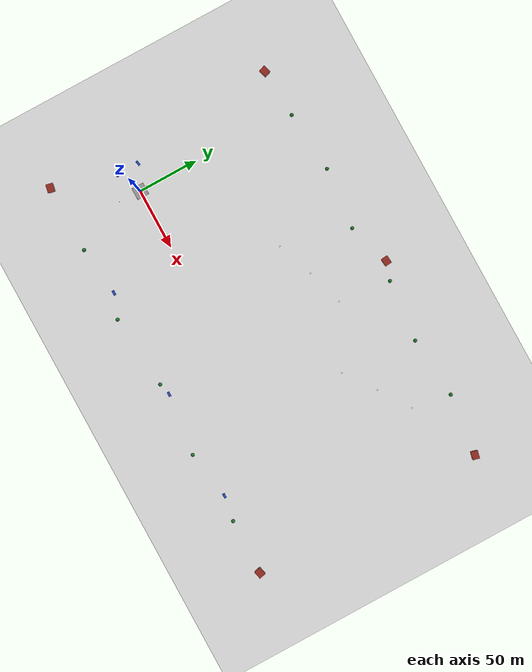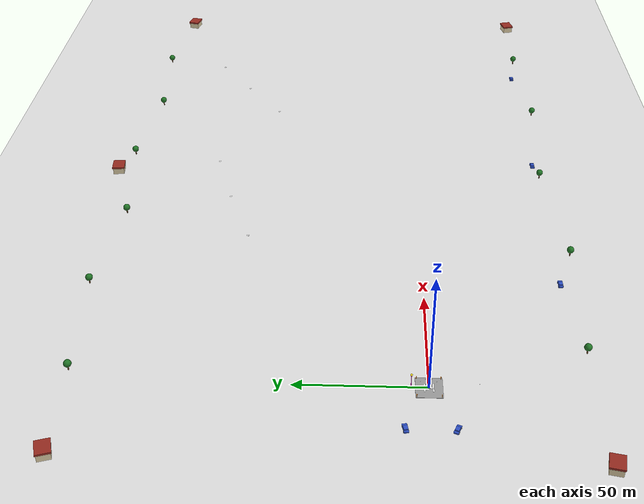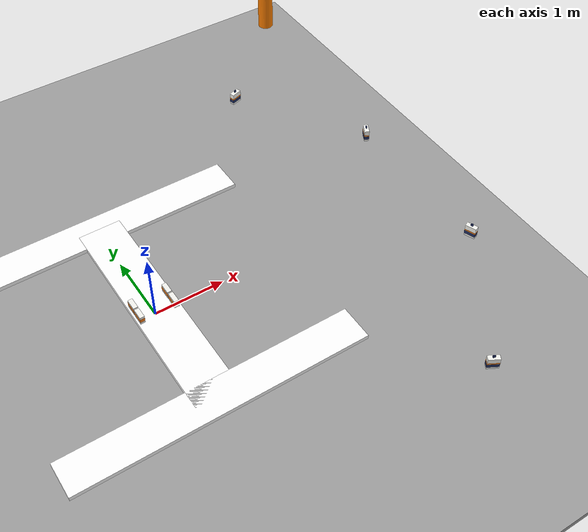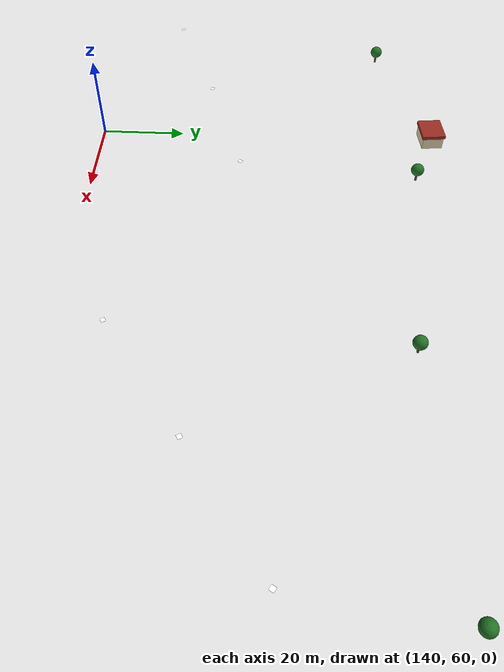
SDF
<?xml version="1.0" ?>
<sdf version="1.9">
  <world name="aavc_field">

    <!-- Spherical coordinates: world origin = the IAAI KMITL Launch & Recovery
         point (== config site.center == PX4_HOME_*; keep all in sync). -->
    <spherical_coordinates>
      <surface_model>EARTH_WGS84</surface_model>
      <latitude_deg>13.730250</latitude_deg>
      <longitude_deg>100.787300</longitude_deg>
      <elevation>2</elevation>
      <heading_deg>0</heading_deg>
    </spherical_coordinates>

    <physics name="1ms" type="ignored">
      <max_step_size>0.001</max_step_size>
      <real_time_factor>1.0</real_time_factor>
      <real_time_update_rate>1000</real_time_update_rate>
    </physics>

    <!-- Standard physics + sensors plugins -->
    <plugin filename="gz-sim-physics-system" name="gz::sim::systems::Physics"/>
    <plugin filename="gz-sim-user-commands-system" name="gz::sim::systems::UserCommands"/>
    <plugin filename="gz-sim-scene-broadcaster-system" name="gz::sim::systems::SceneBroadcaster"/>
    <plugin filename="gz-sim-sensors-system" name="gz::sim::systems::Sensors">
      <render_engine>ogre2</render_engine>
    </plugin>
    <plugin filename="gz-sim-imu-system" name="gz::sim::systems::Imu"/>
    <plugin filename="gz-sim-air-pressure-system" name="gz::sim::systems::AirPressure"/>
    <plugin filename="gz-sim-magnetometer-system" name="gz::sim::systems::Magnetometer"/>
    <plugin filename="gz-sim-navsat-system" name="gz::sim::systems::NavSat"/>

    <!-- Wind plugin — light, steady breeze for landing-precision realism.
         Tuning lives in sitl/aavc_config.yaml.wind_sitl. -->
    <plugin filename="gz-sim-wind-effects-system" name="gz::sim::systems::WindEffects">
      <horizontal>
        <magnitude>
          <time_for_rise>10</time_for_rise>
          <sin>
            <amplitude_percent>0.5</amplitude_percent>
            <period>60</period>
          </sin>
          <noise type="gaussian">
            <mean>0</mean>
            <stddev>0.5</stddev>
          </noise>
        </magnitude>
        <direction>
          <time_for_rise>20</time_for_rise>
          <sin>
            <amplitude>15</amplitude>
            <period>120</period>
          </sin>
        </direction>
      </horizontal>
      <vertical>
        <noise type="gaussian">
          <mean>0</mean>
          <stddev>0.1</stddev>
        </noise>
      </vertical>
    </plugin>
    <wind>
      <linear_velocity>3 0 0</linear_velocity>
    </wind>

    <!-- Sun -->
    <light type="directional" name="sun">
      <cast_shadows>true</cast_shadows>
      <pose>0 0 200 0 0 0</pose>
      <diffuse>1 1 1 1</diffuse>
      <specular>0.6 0.6 0.6 1</specular>
      <attenuation>
        <range>1000</range>
        <constant>0.9</constant>
        <linear>0.01</linear>
        <quadratic>0.001</quadratic>
      </attenuation>
      <direction>-0.5 0.2 -0.9</direction>
    </light>

    <!-- Ambient + sky -->
    <scene>
      <ambient>0.4 0.4 0.4 1</ambient>
      <background>0.7 0.85 1.0</background>
      <sky/>
    </scene>

    <!-- Ground plane, comfortably larger than the ~296 x 167 m controlled
         airspace. Grass green with a dull specular so the WHITE pads stand
         out for the pad-blob cue + ArUco decode. -->
    <model name="ground_plane">
      <static>true</static>
      <pose>134 41 0 0 0 0</pose>
      <link name="link">
        <collision name="collision">
          <geometry>
            <plane>
              <normal>0 0 1</normal>
              <size>400 260</size>
            </plane>
          </geometry>
        </collision>
        <visual name="visual">
          <geometry>
            <plane>
              <normal>0 0 1</normal>
              <size>400 260</size>
            </plane>
          </geometry>
          <material>
            <ambient>0.6 0.6 0.6 1</ambient>
            <diffuse>0.9 0.9 0.9 1</diffuse>
            <specular>0.03 0.03 0.03 1</specular>
            <pbr>
              <metal>
                <albedo_map>model://aavc_ground/materials/textures/grass.png</albedo_map>
                <metalness>0.0</metalness>
                <roughness>1.0</roughness>
              </metal>
            </pbr>
          </material>
        </visual>
      </link>
    </model>

    <include>
      <name>cargo_box_1</name>
      <uri>model://cargo_box</uri>
      <pose>3.0 3.0 0.10 0 0 0.3</pose>
    </include>
    <include>
      <name>cargo_box_2</name>
      <uri>model://cargo_box</uri>
      <pose>3.0 -3.0 0.10 0 0 -0.5</pose>
    </include>
    <include>
      <name>cargo_box_3</name>
      <uri>model://cargo_box</uri>
      <pose>4.2 1.2 0.10 0 0 1.1</pose>
    </include>
    <include>
      <name>cargo_box_4</name>
      <uri>model://cargo_box</uri>
      <pose>4.2 -1.2 0.10 0 0 -1.2</pose>
    </include>

    <include>
      <name>cargo_payload_0</name>
      <uri>model://cargo_payload</uri>
      <pose>0.24 0.09 0.19 0 0 1.5708</pose>
    </include>
    <include>
      <name>cargo_payload_1</name>
      <uri>model://cargo_payload</uri>
      <pose>-0.24 -0.09 0.19 0 0 1.5708</pose>
    </include>
    <include>
      <name>cargo_payload_2</name>
      <uri>model://cargo_payload</uri>
      <pose>0.24 -0.09 0.19 0 0 1.5708</pose>
    </include>
    <include>
      <name>cargo_payload_3</name>
      <uri>model://cargo_payload</uri>
      <pose>-0.24 0.09 0.19 0 0 1.5708</pose>
    </include>

    <model name="launch_pad">
      <static>true</static>
      <pose>0 0 0.05 0 0 0</pose>
      <link name="link">
        <visual name="visual">
          <geometry>
            <box><size>10 10 0.1</size></box>
          </geometry>
          <material>
            <ambient>0.55 0.55 0.55 1</ambient>
            <diffuse>0.62 0.62 0.62 1</diffuse>
            <specular>0.1 0.1 0.1 1</specular>
          </material>
        </visual>
        <collision name="collision">
          <geometry><box><size>10 10 0.1</size></box></geometry>
        </collision>
      </link>
    </model>

    <include>
      <name>pad_1</name>
      <uri>model://landing_pad_id_1</uri>
      <pose>90 75 0 0 0 0.0</pose>
    </include>
    <include>
      <name>pad_2</name>
      <uri>model://landing_pad_id_3</uri>
      <pose>150 95 0 0 0 0.95993</pose>
    </include>
    <include>
      <name>pad_3</name>
      <uri>model://landing_pad_id_4</uri>
      <pose>200 70 0 0 0 2.09440</pose>
    </include>
    <include>
      <name>pad_4</name>
      <uri>model://landing_pad_id_6</uri>
      <pose>250 105 0 0 0 4.18879</pose>
    </include>
    <include>
      <name>pad_5</name>
      <uri>model://landing_pad_id_2</uri>
      <pose>120 86 0 0 0 2.96706</pose>
    </include>
    <include>
      <name>pad_6</name>
      <uri>model://landing_pad_id_5</uri>
      <pose>225 88 0 0 0 5.23599</pose>
    </include>

    <model name="takeoff_marker">
      <static>true</static>
      <link name="link">
        <visual name="h_bar_left">
          <pose>0 -1.6 0.13 0 0 0</pose>
          <geometry><box><size>4.0 0.5 0.06</size></box></geometry>
          <material><ambient>0.95 0.95 0.95 1</ambient><diffuse>1 1 1 1</diffuse></material>
        </visual>
        <visual name="h_bar_right">
          <pose>0 1.6 0.13 0 0 0</pose>
          <geometry><box><size>4.0 0.5 0.06</size></box></geometry>
          <material><ambient>0.95 0.95 0.95 1</ambient><diffuse>1 1 1 1</diffuse></material>
        </visual>
        <visual name="h_cross">
          <pose>0 0 0.13 0 0 0</pose>
          <geometry><box><size>0.6 3.2 0.06</size></box></geometry>
          <material><ambient>0.95 0.95 0.95 1</ambient><diffuse>1 1 1 1</diffuse></material>
        </visual>
        <visual name="beacon_pole">
          <pose>0 6.5 3.0 0 0 0</pose>
          <geometry><cylinder><radius>0.12</radius><length>6.0</length></cylinder></geometry>
          <material><ambient>0.7 0.0 0.6 1</ambient><diffuse>0.95 0.1 0.85 1</diffuse></material>
        </visual>
        <visual name="beacon_ball">
          <pose>0 6.5 6.2 0 0 0</pose>
          <geometry><sphere><radius>0.45</radius></sphere></geometry>
          <material>
            <ambient>0.9 0.8 0.0 1</ambient>
            <diffuse>1.0 0.9 0.1 1</diffuse>
            <emissive>0.6 0.5 0.0 1</emissive>
          </material>
        </visual>
        <visual name="post_ne"><pose>4.5 4.5 0.6 0 0 0</pose><geometry><cylinder><radius>0.12</radius><length>1.2</length></cylinder></geometry><material><ambient>0.85 0.4 0.0 1</ambient><diffuse>1.0 0.5 0.0 1</diffuse></material></visual>
        <visual name="post_nw"><pose>-4.5 4.5 0.6 0 0 0</pose><geometry><cylinder><radius>0.12</radius><length>1.2</length></cylinder></geometry><material><ambient>0.85 0.4 0.0 1</ambient><diffuse>1.0 0.5 0.0 1</diffuse></material></visual>
        <visual name="post_se"><pose>4.5 -4.5 0.6 0 0 0</pose><geometry><cylinder><radius>0.12</radius><length>1.2</length></cylinder></geometry><material><ambient>0.85 0.4 0.0 1</ambient><diffuse>1.0 0.5 0.0 1</diffuse></material></visual>
        <visual name="post_sw"><pose>-4.5 -4.5 0.6 0 0 0</pose><geometry><cylinder><radius>0.12</radius><length>1.2</length></cylinder></geometry><material><ambient>0.85 0.4 0.0 1</ambient><diffuse>1.0 0.5 0.0 1</diffuse></material></visual>
      </link>
    </model>

    <include>
      <name>spectator_cam</name>
      <uri>model://spectator_cam</uri>
      <pose>0 -18 2.5 0 -0.26 1.5708</pose>
    </include>

    <!-- Trees — beyond the north boundary (y >= 130) -->
    <include><name>tree_n1</name><uri>model://tree</uri><pose>5 132 0 0 0 0</pose></include>
    <include><name>tree_n2</name><uri>model://tree</uri><pose>55 136 0 0 0 0</pose></include>
    <include><name>tree_n3</name><uri>model://tree</uri><pose>105 131 0 0 0 0</pose></include>
    <include><name>tree_n4</name><uri>model://tree</uri><pose>155 137 0 0 0 0</pose></include>
    <include><name>tree_n5</name><uri>model://tree</uri><pose>205 132 0 0 0 0</pose></include>
    <include><name>tree_n6</name><uri>model://tree</uri><pose>255 136 0 0 0 0</pose></include>
    <!-- Trees — beyond the south boundary (y <= -58) -->
    <include><name>tree_s1</name><uri>model://tree</uri><pose>20 -60 0 0 0 0</pose></include>
    <include><name>tree_s2</name><uri>model://tree</uri><pose>80 -63 0 0 0 0</pose></include>
    <include><name>tree_s3</name><uri>model://tree</uri><pose>140 -58 0 0 0 0</pose></include>
    <include><name>tree_s4</name><uri>model://tree</uri><pose>200 -62 0 0 0 0</pose></include>
    <include><name>tree_s5</name><uri>model://tree</uri><pose>260 -59 0 0 0 0</pose></include>
    <!-- Houses — outside the corners -->
    <include><name>house_w_n</name><uri>model://house</uri><pose>-35 130 0 0 0 0.3</pose></include>
    <include><name>house_w_s</name><uri>model://house</uri><pose>-35 -60 0 0 0 -0.2</pose></include>
    <include><name>house_e_n</name><uri>model://house</uri><pose>305 130 0 0 0 2.9</pose></include>
    <include><name>house_e_s</name><uri>model://house</uri><pose>305 -60 0 0 0 -2.9</pose></include>
    <include><name>house_mid_n</name><uri>model://house</uri><pose>140 142 0 0 0 0.1</pose></include>
    <!-- Cars — west of the L&R pad (outside the airspace) + south "road" -->
    <include><name>car_launch1</name><uri>model://car</uri><pose>-20 9 0 0 0 0.2</pose></include>
    <include><name>car_launch2</name><uri>model://car</uri><pose>-20 -9 0 0 0 -0.4</pose></include>
    <include><name>car_road1</name><uri>model://car</uri><pose>60 -56 0 0 0 0</pose></include>
    <include><name>car_road2</name><uri>model://car</uri><pose>150 -56 0 0 0 0</pose></include>
    <include><name>car_road3</name><uri>model://car</uri><pose>240 -56 0 0 0 0</pose></include>

  </world>
</sdf>

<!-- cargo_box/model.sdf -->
<sdf version="1.9">
  <model name="cargo_box">
    <static>true</static>
    <link name="link">
      <!-- white card body (16 x 7 x 18 cm), base at z=0 -->
      <visual name="body">
        <pose>0 0 0.09 0 0 0</pose>
        <geometry>
          <box><size>0.16 0.07 0.18</size></box>
        </geometry>
        <material>
          <ambient>0.92 0.92 0.90 1</ambient>
          <diffuse>0.96 0.96 0.94 1</diffuse>
          <specular>0.05 0.05 0.05 1</specular>
        </material>
      </visual>
      <!-- navy print band (the heart-box artwork) -->
      <visual name="print_band">
        <pose>0 0 0.055 0 0 0</pose>
        <geometry>
          <box><size>0.162 0.072 0.05</size></box>
        </geometry>
        <material>
          <ambient>0.10 0.14 0.30 1</ambient>
          <diffuse>0.13 0.18 0.38 1</diffuse>
        </material>
      </visual>
      <!-- orange accent stripe -->
      <visual name="accent_stripe">
        <pose>0 0 0.095 0 0 0</pose>
        <geometry>
          <box><size>0.162 0.072 0.02</size></box>
        </geometry>
        <material>
          <ambient>0.85 0.40 0.05 1</ambient>
          <diffuse>1.00 0.50 0.08 1</diffuse>
        </material>
      </visual>
      <!-- handle loop over the top -->
      <visual name="handle">
        <pose>0 0 0.20 1.5708 0 0</pose>
        <geometry>
          <cylinder><radius>0.022</radius><length>0.012</length></cylinder>
        </geometry>
        <material>
          <ambient>0.10 0.14 0.30 1</ambient>
          <diffuse>0.13 0.18 0.38 1</diffuse>
        </material>
      </visual>
      <!-- single collision = the card box itself -->
      <collision name="collision">
        <pose>0 0 0.09 0 0 0</pose>
        <geometry>
          <box><size>0.16 0.07 0.18</size></box>
        </geometry>
      </collision>
    </link>
  </model>
</sdf>

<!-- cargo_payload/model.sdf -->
<sdf version="1.9">
  <model name="cargo_payload">
    <static>false</static>
    <link name="payload">
      <inertial>
        <mass>0.090</mass>
        <inertia>
          <ixx>0.00027469</ixx><ixy>0</ixy><ixz>0</ixz>
          <iyy>0.00043500</iyy><iyz>0</iyz>
          <izz>0.00022369</izz>
        </inertia>
      </inertial>
      <!-- white/cream card body, centred on the link origin -->
      <visual name="body">
        <geometry>
          <box><size>0.16 0.065 0.18</size></box>
        </geometry>
        <material>
          <ambient>0.92 0.92 0.90 1</ambient>
          <diffuse>0.96 0.96 0.94 1</diffuse>
          <specular>0.05 0.05 0.05 1</specular>
        </material>
      </visual>
      <!-- orange accent band (same motif as cargo_box's accent_stripe) so a
           shed box reads clearly against the white pad + green turf. -->
      <visual name="accent_band">
        <pose>0 0 0.03 0 0 0</pose>
        <geometry>
          <box><size>0.162 0.067 0.05</size></box>
        </geometry>
        <material>
          <ambient>0.85 0.40 0.05 1</ambient>
          <diffuse>1.00 0.50 0.08 1</diffuse>
        </material>
      </visual>
      <collision name="collision">
        <geometry>
          <box><size>0.16 0.065 0.18</size></box>
        </geometry>
        <surface>
          <contact><collide_bitmask>0x02</collide_bitmask></contact>
        </surface>
      </collision>
    </link>
  </model>
</sdf>

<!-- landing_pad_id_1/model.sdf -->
<sdf version="1.9">
  <model name="landing_pad_id_1">
    <static>true</static>
    <link name="pad">
      <pose>0 0 0.005 0 0 0</pose>
      <visual name="pad_visual">
        <geometry>
          <box>
            <size>1.0 1.0 0.01</size>
          </box>
        </geometry>
        <material>
          <pbr>
            <metal>
              <albedo_map>materials/textures/pad_1.png</albedo_map>
            </metal>
          </pbr>
          <ambient>1 1 1 1</ambient>
          <diffuse>1 1 1 1</diffuse>
        </material>
      </visual>
      <collision name="pad_collision">
        <geometry>
          <box>
            <size>1.0 1.0 0.01</size>
          </box>
        </geometry>
      </collision>
    </link>
  </model>
</sdf>

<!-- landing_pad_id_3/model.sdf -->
<sdf version="1.9">
  <model name="landing_pad_id_3">
    <static>true</static>
    <link name="pad">
      <pose>0 0 0.005 0 0 0</pose>
      <visual name="pad_visual">
        <geometry>
          <box>
            <size>1.0 1.0 0.01</size>
          </box>
        </geometry>
        <material>
          <pbr>
            <metal>
              <albedo_map>materials/textures/pad_3.png</albedo_map>
            </metal>
          </pbr>
          <ambient>1 1 1 1</ambient>
          <diffuse>1 1 1 1</diffuse>
        </material>
      </visual>
      <collision name="pad_collision">
        <geometry>
          <box>
            <size>1.0 1.0 0.01</size>
          </box>
        </geometry>
      </collision>
    </link>
  </model>
</sdf>

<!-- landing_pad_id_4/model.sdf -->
<sdf version="1.9">
  <model name="landing_pad_id_4">
    <static>true</static>
    <link name="pad">
      <pose>0 0 0.005 0 0 0</pose>
      <visual name="pad_visual">
        <geometry>
          <box>
            <size>1.0 1.0 0.01</size>
          </box>
        </geometry>
        <material>
          <pbr>
            <metal>
              <albedo_map>materials/textures/pad_4.png</albedo_map>
            </metal>
          </pbr>
          <ambient>1 1 1 1</ambient>
          <diffuse>1 1 1 1</diffuse>
        </material>
      </visual>
      <collision name="pad_collision">
        <geometry>
          <box>
            <size>1.0 1.0 0.01</size>
          </box>
        </geometry>
      </collision>
    </link>
  </model>
</sdf>

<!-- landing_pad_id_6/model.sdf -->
<sdf version="1.9">
  <model name="landing_pad_id_6">
    <static>true</static>
    <link name="pad">
      <pose>0 0 0.005 0 0 0</pose>
      <visual name="pad_visual">
        <geometry>
          <box>
            <size>1.0 1.0 0.01</size>
          </box>
        </geometry>
        <material>
          <pbr>
            <metal>
              <albedo_map>materials/textures/pad_6.png</albedo_map>
            </metal>
          </pbr>
          <ambient>1 1 1 1</ambient>
          <diffuse>1 1 1 1</diffuse>
        </material>
      </visual>
      <collision name="pad_collision">
        <geometry>
          <box>
            <size>1.0 1.0 0.01</size>
          </box>
        </geometry>
      </collision>
    </link>
  </model>
</sdf>

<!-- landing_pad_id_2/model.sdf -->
<sdf version="1.9">
  <model name="landing_pad_id_2">
    <static>true</static>
    <link name="pad">
      <pose>0 0 0.005 0 0 0</pose>
      <visual name="pad_visual">
        <geometry>
          <box>
            <size>1.0 1.0 0.01</size>
          </box>
        </geometry>
        <material>
          <pbr>
            <metal>
              <albedo_map>materials/textures/pad_2.png</albedo_map>
            </metal>
          </pbr>
          <ambient>1 1 1 1</ambient>
          <diffuse>1 1 1 1</diffuse>
        </material>
      </visual>
      <collision name="pad_collision">
        <geometry>
          <box>
            <size>1.0 1.0 0.01</size>
          </box>
        </geometry>
      </collision>
    </link>
  </model>
</sdf>

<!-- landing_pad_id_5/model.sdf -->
<sdf version="1.9">
  <model name="landing_pad_id_5">
    <static>true</static>
    <link name="pad">
      <pose>0 0 0.005 0 0 0</pose>
      <visual name="pad_visual">
        <geometry>
          <box>
            <size>1.0 1.0 0.01</size>
          </box>
        </geometry>
        <material>
          <pbr>
            <metal>
              <albedo_map>materials/textures/pad_5.png</albedo_map>
            </metal>
          </pbr>
          <ambient>1 1 1 1</ambient>
          <diffuse>1 1 1 1</diffuse>
        </material>
      </visual>
      <collision name="pad_collision">
        <geometry>
          <box>
            <size>1.0 1.0 0.01</size>
          </box>
        </geometry>
      </collision>
    </link>
  </model>
</sdf>

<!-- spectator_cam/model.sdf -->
<sdf version="1.9">
  <model name="spectator_cam">
    <static>true</static>
    <link name="link">
      <visual name="body">
        <geometry><box><size>0.12 0.12 0.12</size></box></geometry>
        <material>
          <ambient>0.05 0.05 0.06 1</ambient>
          <diffuse>0.12 0.12 0.14 1</diffuse>
        </material>
      </visual>
      <sensor name="spectator_imager" type="camera">
        <pose>0 0 0 0 0 0</pose>
        <camera>
          <horizontal_fov>1.25</horizontal_fov>
          <image>
            <width>640</width>
            <height>480</height>
          </image>
          <clip>
            <near>0.1</near>
            <far>1000</far>
          </clip>
        </camera>
        <always_on>1</always_on>
        <update_rate>15</update_rate>
        <visualize>false</visualize>
        <topic>/spectator_camera</topic>
      </sensor>
    </link>
  </model>
</sdf>

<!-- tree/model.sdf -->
<!-- Primitive tree: brown cylinder trunk + green sphere canopy (~4.5 m tall).
     Static scenery placed OUTSIDE the 60 m field so it never obstructs the
     flight corridor, targets, or landings. -->
<sdf version="1.9">
  <model name="tree">
    <static>true</static>
    <link name="link">
      <visual name="trunk">
        <pose>0 0 1.0 0 0 0</pose>
        <geometry>
          <cylinder><radius>0.25</radius><length>2.0</length></cylinder>
        </geometry>
        <material>
          <ambient>0.34 0.22 0.11 1</ambient>
          <diffuse>0.40 0.26 0.13 1</diffuse>
        </material>
      </visual>
      <visual name="canopy">
        <pose>0 0 3.1 0 0 0</pose>
        <geometry>
          <sphere><radius>1.5</radius></sphere>
        </geometry>
        <material>
          <ambient>0.10 0.34 0.12 1</ambient>
          <diffuse>0.13 0.46 0.15 1</diffuse>
        </material>
      </visual>
      <collision name="trunk_col">
        <pose>0 0 1.0 0 0 0</pose>
        <geometry>
          <cylinder><radius>0.3</radius><length>2.0</length></cylinder>
        </geometry>
      </collision>
    </link>
  </model>
</sdf>

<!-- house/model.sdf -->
<!-- Primitive house: tan box walls (6x5x3) + dark-red roof slab. Static
     scenery placed OUTSIDE the field perimeter. -->
<sdf version="1.9">
  <model name="house">
    <static>true</static>
    <link name="link">
      <visual name="walls">
        <pose>0 0 1.5 0 0 0</pose>
        <geometry>
          <box><size>6 5 3</size></box>
        </geometry>
        <material>
          <ambient>0.78 0.72 0.58 1</ambient>
          <diffuse>0.88 0.82 0.66 1</diffuse>
        </material>
      </visual>
      <visual name="roof">
        <pose>0 0 3.35 0 0 0</pose>
        <geometry>
          <box><size>6.6 5.6 0.8</size></box>
        </geometry>
        <material>
          <ambient>0.45 0.13 0.10 1</ambient>
          <diffuse>0.60 0.17 0.13 1</diffuse>
        </material>
      </visual>
      <collision name="col">
        <pose>0 0 1.75 0 0 0</pose>
        <geometry>
          <box><size>6.6 5.6 3.5</size></box>
        </geometry>
      </collision>
    </link>
  </model>
</sdf>

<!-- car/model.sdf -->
<sdf version="1.9">
  <model name="car">
    <static>true</static>
    <link name="link">
      <visual name="chassis">
        <pose>0 0 0.5 0 0 0</pose>
        <geometry>
          <box><size>4.0 1.8 0.6</size></box>
        </geometry>
        <material>
          <ambient>0.13 0.22 0.55 1</ambient>
          <diffuse>0.18 0.32 0.80 1</diffuse>
        </material>
      </visual>
      <visual name="cabin">
        <pose>-0.2 0 1.05 0 0 0</pose>
        <geometry>
          <box><size>2.0 1.6 0.6</size></box>
        </geometry>
        <material>
          <ambient>0.13 0.22 0.55 1</ambient>
          <diffuse>0.18 0.32 0.80 1</diffuse>
        </material>
      </visual>
      <visual name="wheel_fl">
        <pose>1.3 0.9 0.35 1.5708 0 0</pose>
        <geometry><cylinder><radius>0.35</radius><length>0.25</length></cylinder></geometry>
        <material><ambient>0.05 0.05 0.05 1</ambient><diffuse>0.08 0.08 0.08 1</diffuse></material>
      </visual>
      <visual name="wheel_fr">
        <pose>1.3 -0.9 0.35 1.5708 0 0</pose>
        <geometry><cylinder><radius>0.35</radius><length>0.25</length></cylinder></geometry>
        <material><ambient>0.05 0.05 0.05 1</ambient><diffuse>0.08 0.08 0.08 1</diffuse></material>
      </visual>
      <visual name="wheel_rl">
        <pose>-1.3 0.9 0.35 1.5708 0 0</pose>
        <geometry><cylinder><radius>0.35</radius><length>0.25</length></cylinder></geometry>
        <material><ambient>0.05 0.05 0.05 1</ambient><diffuse>0.08 0.08 0.08 1</diffuse></material>
      </visual>
      <visual name="wheel_rr">
        <pose>-1.3 -0.9 0.35 1.5708 0 0</pose>
        <geometry><cylinder><radius>0.35</radius><length>0.25</length></cylinder></geometry>
        <material><ambient>0.05 0.05 0.05 1</ambient><diffuse>0.08 0.08 0.08 1</diffuse></material>
      </visual>
      <collision name="col">
        <pose>0 0 0.6 0 0 0</pose>
        <geometry><box><size>4.0 1.8 1.2</size></box></geometry>
      </collision>
    </link>
  </model>
</sdf>
